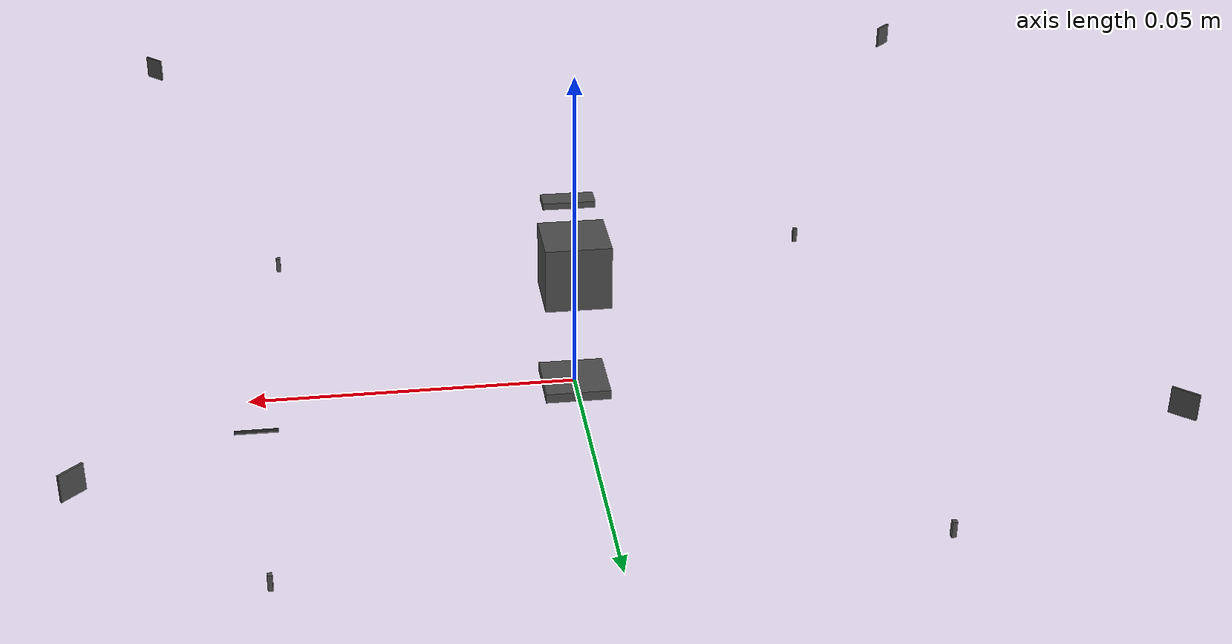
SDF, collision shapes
<sdf version='1.6'>
  <model name='Kwad'>
    <link name='body'>
      <pose frame=''>0 0 0 0 -0 0</pose>
      <inertial>
        <pose frame=''>0 0 0.002661 0 -0 0</pose>
        <mass>0.109</mass>
        <inertia>
          <ixx>0.000202744</ixx>
          <ixy>0</ixy>
          <ixz>0</ixz>
          <iyy>0.000202788</iyy>
          <iyz>0</iyz>
          <izz>0.000290849</izz>
        </inertia>
      </inertial>
      <collision name='body_collision'>
        <pose frame=''>0 0 0 0 -0 0</pose>
        <geometry>
          <box>
            <size>0.01 0.01 0.0015</size>
          </box>
        </geometry>
        <surface>
          <contact>
            <ode/>
          </contact>
          <friction>
            <ode/>
          </friction>
        </surface>
      </collision>
      <collision name='body_fixed_joint_lump__cap_collision_1'>
        <pose frame=''>0 -0.008 0.027 0 -0 0</pose>
        <geometry>
          <box>
            <size>0.008 0.0035 0.001</size>
          </box>
        </geometry>
        <surface>
          <contact>
            <ode/>
          </contact>
          <friction>
            <ode/>
          </friction>
        </surface>
      </collision>
      <collision name='body_fixed_joint_lump__imu_link_collision_2'>
        <pose frame=''>0 0 0.02 0 -0 0</pose>
        <geometry>
          <box>
            <size>0.01 0.01 0.01</size>
          </box>
        </geometry>
        <surface>
          <contact>
            <ode/>
          </contact>
          <friction>
            <ode/>
          </friction>
        </surface>
      </collision>
      <collision name='body_fixed_joint_lump__motor1_collision_3'>
        <pose frame=''>-0.046 -0.046 0 0 -0 0</pose>
        <geometry>
          <box>
            <size>0.0007 0.0007 0.0025</size>
          </box>
        </geometry>
        <surface>
          <contact>
            <ode/>
          </contact>
          <friction>
            <ode/>
          </friction>
        </surface>
      </collision>
      <collision name='body_fixed_joint_lump__guard1_collision_4'>
        <pose frame=''>-0.0655 -0.0655 0.03 -3.14159 -1.57079 2.3562</pose>
        <geometry>
          <box>
            <size>0.0035 0.0035 0.0003</size>
          </box>
        </geometry>
        <surface>
          <contact>
            <ode/>
          </contact>
          <friction>
            <ode/>
          </friction>
        </surface>
      </collision>
      <collision name='body_fixed_joint_lump__motor2_collision_5'>
        <pose frame=''>-0.046 0.046 0 0 -0 0</pose>
        <geometry>
          <box>
            <size>0.0007 0.0007 0.0025</size>
          </box>
        </geometry>
        <surface>
          <contact>
            <ode/>
          </contact>
          <friction>
            <ode/>
          </friction>
        </surface>
      </collision>
      <collision name='body_fixed_joint_lump__guard2_collision_6'>
        <pose frame=''>-0.0655 0.0655 0.03 3.14159 -1.57079 0.785403</pose>
        <geometry>
          <box>
            <size>0.0035 0.0035 0.0003</size>
          </box>
        </geometry>
        <surface>
          <contact>
            <ode/>
          </contact>
          <friction>
            <ode/>
          </friction>
        </surface>
      </collision>
      <collision name='body_fixed_joint_lump__motor3_collision_7'>
        <pose frame=''>0.046 -0.046 0 0 -0 0</pose>
        <geometry>
          <box>
            <size>0.0007 0.0007 0.0025</size>
          </box>
        </geometry>
        <surface>
          <contact>
            <ode/>
          </contact>
          <friction>
            <ode/>
          </friction>
        </surface>
      </collision>
      <collision name='body_fixed_joint_lump__guard3_collision_8'>
        <pose frame=''>0.0655 -0.0655 0.03 3.14159 -1.57079 -2.3562</pose>
        <geometry>
          <box>
            <size>0.0035 0.0035 0.0003</size>
          </box>
        </geometry>
        <surface>
          <contact>
            <ode/>
          </contact>
          <friction>
            <ode/>
          </friction>
        </surface>
      </collision>
      <collision name='body_fixed_joint_lump__motor4_collision_9'>
        <pose frame=''>0.046 0.046 0 0 -0 0</pose>
        <geometry>
          <box>
            <size>0.0007 0.0007 0.0025</size>
          </box>
        </geometry>
        <surface>
          <contact>
            <ode/>
          </contact>
          <friction>
            <ode/>
          </friction>
        </surface>
      </collision>
      <collision name='body_fixed_joint_lump__guard4_collision_10'>
        <pose frame=''>0.0655 0.0655 0.03 3.14159 -1.57079 -0.785403</pose>
        <geometry>
          <box>
            <size>0.0035 0.0035 0.0003</size>
          </box>
        </geometry>
        <surface>
          <contact>
            <ode/>
          </contact>
          <friction>
            <ode/>
          </friction>
        </surface>
      </collision>
      <visual name='body_visual'>
        <pose frame=''>0 0 0 0 -0 0</pose>
        <geometry>
          <mesh>
            <scale>0.01 0.01 0.01</scale>
            <uri>model://fly_bot_cpp/meshes/body.dae</uri>
          </mesh>
        </geometry>
        <material>
          <script>
            <name>Gazebo/DarkGrey</name>
            <uri>file://media/materials/scripts/gazebo.material</uri>
          </script>
        </material>
      </visual>
      <visual name='body_fixed_joint_lump__cap_visual_1'>
        <pose frame=''>0 -0.008 0.027 0 -0 0</pose>
        <geometry>
          <mesh>
            <scale>0.0088 0.0088 0.0088</scale>
            <uri>model://fly_bot_cpp/meshes/cap.dae</uri>
          </mesh>
        </geometry>
        <material>
          <script>
            <name>Gazebo/FlatBlack</name>
            <uri>file://media/materials/scripts/gazebo.material</uri>
          </script>
        </material>
      </visual>
      <visual name='body_fixed_joint_lump__imu_link_visual_2'>
        <pose frame=''>0 0 0.02 0 -0 0</pose>
        <geometry>
          <box>
            <size>0.001 0.001 0.001</size>
          </box>
        </geometry>
        <material>
          <script>
            <uri>__default__</uri>
            <name>__default__</name>
          </script>
        </material>
      </visual>
      <visual name='body_fixed_joint_lump__motor1_visual_3'>
        <pose frame=''>-0.046 -0.046 0 0 -0 0</pose>
        <geometry>
          <mesh>
            <scale>0.01 0.01 0.01</scale>
            <uri>model://fly_bot_cpp/meshes/motors.dae</uri>
          </mesh>
        </geometry>
        <material>
          <script>
            <name>Gazebo/Grey</name>
            <uri>file://media/materials/scripts/gazebo.material</uri>
          </script>
        </material>
      </visual>
      <visual name='body_fixed_joint_lump__guard1_visual_4'>
        <pose frame=''>-0.0655 -0.0655 0.03 -3.14159 -1.57079 2.3562</pose>
        <geometry>
          <mesh>
            <scale>0.03 0.03 0.03</scale>
            <uri>model://fly_bot_cpp/meshes/guard.stl</uri>
          </mesh>
        </geometry>
        <material>
          <script>
            <name>Gazebo/FlatBlack</name>
            <uri>file://media/materials/scripts/gazebo.material</uri>
          </script>
        </material>
      </visual>
      <visual name='body_fixed_joint_lump__motor2_visual_5'>
        <pose frame=''>-0.046 0.046 0 0 -0 0</pose>
        <geometry>
          <mesh>
            <scale>0.01 0.01 0.01</scale>
            <uri>model://fly_bot_cpp/meshes/motors.dae</uri>
          </mesh>
        </geometry>
        <material>
          <script>
            <name>Gazebo/Grey</name>
            <uri>file://media/materials/scripts/gazebo.material</uri>
          </script>
        </material>
      </visual>
      <visual name='body_fixed_joint_lump__guard2_visual_6'>
        <pose frame=''>-0.0655 0.0655 0.03 3.14159 -1.57079 0.785403</pose>
        <geometry>
          <mesh>
            <scale>0.03 0.03 0.03</scale>
            <uri>model://fly_bot_cpp/meshes/guard.stl</uri>
          </mesh>
        </geometry>
        <material>
          <script>
            <name>Gazebo/FlatBlack</name>
            <uri>file://media/materials/scripts/gazebo.material</uri>
          </script>
        </material>
      </visual>
      <visual name='body_fixed_joint_lump__motor3_visual_7'>
        <pose frame=''>0.046 -0.046 0 0 -0 0</pose>
        <geometry>
          <mesh>
            <scale>0.01 0.01 0.01</scale>
            <uri>model://fly_bot_cpp/meshes/motors.dae</uri>
          </mesh>
        </geometry>
        <material>
          <script>
            <name>Gazebo/Grey</name>
            <uri>file://media/materials/scripts/gazebo.material</uri>
          </script>
        </material>
      </visual>
      <visual name='body_fixed_joint_lump__guard3_visual_8'>
        <pose frame=''>0.0655 -0.0655 0.03 3.14159 -1.57079 -2.3562</pose>
        <geometry>
          <mesh>
            <scale>0.03 0.03 0.03</scale>
            <uri>model://fly_bot_cpp/meshes/guard.stl</uri>
          </mesh>
        </geometry>
        <material>
          <script>
            <name>Gazebo/FlatBlack</name>
            <uri>file://media/materials/scripts/gazebo.material</uri>
          </script>
        </material>
      </visual>
      <visual name='body_fixed_joint_lump__motor4_visual_9'>
        <pose frame=''>0.046 0.046 0 0 -0 0</pose>
        <geometry>
          <mesh>
            <scale>0.01 0.01 0.01</scale>
            <uri>model://fly_bot_cpp/meshes/motors.dae</uri>
          </mesh>
        </geometry>
        <material>
          <script>
            <name>Gazebo/Grey</name>
            <uri>file://media/materials/scripts/gazebo.material</uri>
          </script>
        </material>
      </visual>
      <visual name='body_fixed_joint_lump__guard4_visual_10'>
        <pose frame=''>0.0655 0.0655 0.03 3.14159 -1.57079 -0.785403</pose>
        <geometry>
          <mesh>
            <scale>0.03 0.03 0.03</scale>
            <uri>model://fly_bot_cpp/meshes/guard.stl</uri>
          </mesh>
        </geometry>
        <material>
          <script>
            <name>Gazebo/FlatBlack</name>
            <uri>file://media/materials/scripts/gazebo.material</uri>
          </script>
        </material>
      </visual>
      <velocity_decay/>
      <velocity_decay/>
      <velocity_decay/>
      <sensor name='imu_sensor' type='imu'>
        <always_on>1</always_on>
        <update_rate>100</update_rate>
        <visualize>1</visualize>
        <topic>__default_topic__</topic>
        <plugin name='imu_plugin' filename='libgazebo_ros_imu_sensor.so'>
          <bodyName>imu_link</bodyName>
          <topicName>imu</topicName>
          <gaussianNoise>0</gaussianNoise>
          <updateRateHz>10.0</updateRateHz>
          <xyzOffset>0 0 0</xyzOffset>
          <rpyOffset>0 0 0</rpyOffset>
          <frameName>imu_link</frameName>
        </plugin>
        <pose frame=''>0 0 0.02 0 -0 0</pose>
      </sensor>
      <velocity_decay/>
      <velocity_decay/>
      <velocity_decay/>
      <velocity_decay/>
      <velocity_decay/>
      <velocity_decay/>
      <gravity>1</gravity>
      <velocity_decay/>
      <gravity>1</gravity>
      <velocity_decay/>
    </link>
    <link name='prop1'>
      <pose frame=''>-0.046 -0.046 0 0 -0 0</pose>
      <inertial>
        <pose frame=''>0 0 0 0 -0 0</pose>
        <mass>0.05</mass>
        <inertia>
          <ixx>2.7e-07</ixx>
          <ixy>0</ixy>
          <ixz>0</ixz>
          <iyy>1.26e-05</iyy>
          <iyz>0</iyz>
          <izz>1.285e-05</izz>
        </inertia>
      </inertial>
      <collision name='prop1_collision'>
        <pose frame=''>0 0 0.025 0 -0 0</pose>
        <geometry>
          <box>
            <size>0.00055 8e-05 1e-05</size>
          </box>
        </geometry>
        <surface>
          <contact>
            <ode>
              <max_vel>0.0001</max_vel>
              <min_depth>0.0001</min_depth>
            </ode>
          </contact>
          <friction>
            <ode>
              <mu>0.2</mu>
              <mu2>0.2</mu2>
            </ode>
          </friction>
        </surface>
      </collision>
      <visual name='prop1_visual'>
        <pose frame=''>0 0 0.025 0 -0 0</pose>
        <geometry>
          <mesh>
            <scale>0.02 0.02 0.02</scale>
            <uri>model://fly_bot_cpp/meshes/prop1.dae</uri>
          </mesh>
        </geometry>
        <material>
          <script>
            <name>Gazebo/Black</name>
            <uri>file://media/materials/scripts/gazebo.material</uri>
          </script>
        </material>
      </visual>
      <gravity>1</gravity>
      <velocity_decay>
        <linear>0.9</linear>
        <angular>0.9</angular>
      </velocity_decay>
    </link>
    <joint name='joint_body_prop1' type='revolute'>
      <child>prop1</child>
      <parent>body</parent>
      <axis>
        <xyz>0 0 1</xyz>
        <limit>
          <lower>-1e+16</lower>
          <upper>1e+16</upper>
        </limit>
        <dynamics>
          <damping>1</damping>
          <friction>0</friction>
          <spring_reference>0</spring_reference>
          <spring_stiffness>0</spring_stiffness>
        </dynamics>
        <use_parent_model_frame>0</use_parent_model_frame>
      </axis>
    </joint>
    <link name='prop2'>
      <pose frame=''>-0.046 0.046 0 0 -0 0</pose>
      <inertial>
        <pose frame=''>0 0 0 0 -0 0</pose>
        <mass>0.05</mass>
        <inertia>
          <ixx>2.7e-07</ixx>
          <ixy>0</ixy>
          <ixz>0</ixz>
          <iyy>1.26e-05</iyy>
          <iyz>0</iyz>
          <izz>1.285e-05</izz>
        </inertia>
      </inertial>
      <collision name='prop2_collision'>
        <pose frame=''>0 0 0.025 0 -0 0</pose>
        <geometry>
          <box>
            <size>0.00055 8e-05 1e-05</size>
          </box>
        </geometry>
        <surface>
          <contact>
            <ode>
              <max_vel>0.0001</max_vel>
              <min_depth>0.0001</min_depth>
            </ode>
          </contact>
          <friction>
            <ode>
              <mu>0.2</mu>
              <mu2>0.2</mu2>
            </ode>
          </friction>
        </surface>
      </collision>
      <visual name='prop2_visual'>
        <pose frame=''>0 0 0.025 0 -0 0</pose>
        <geometry>
          <mesh>
            <scale>0.02 0.02 0.02</scale>
            <uri>model://fly_bot_cpp/meshes/prop.dae</uri>
          </mesh>
        </geometry>
        <material>
          <script>
            <name>Gazebo/Black</name>
            <uri>file://media/materials/scripts/gazebo.material</uri>
          </script>
        </material>
      </visual>
      <gravity>1</gravity>
      <velocity_decay>
        <linear>0.9</linear>
        <angular>0.9</angular>
      </velocity_decay>
    </link>
    <joint name='joint_body_prop2' type='revolute'>
      <child>prop2</child>
      <parent>body</parent>
      <axis>
        <xyz>0 0 1</xyz>
        <limit>
          <lower>-1e+16</lower>
          <upper>1e+16</upper>
        </limit>
        <dynamics>
          <damping>1</damping>
          <friction>0</friction>
          <spring_reference>0</spring_reference>
          <spring_stiffness>0</spring_stiffness>
        </dynamics>
        <use_parent_model_frame>0</use_parent_model_frame>
      </axis>
    </joint>
    <link name='prop3'>
      <pose frame=''>0.046 -0.046 0 0 -0 0</pose>
      <inertial>
        <pose frame=''>0 0 0 0 -0 0</pose>
        <mass>0.05</mass>
        <inertia>
          <ixx>2.7e-07</ixx>
          <ixy>0</ixy>
          <ixz>0</ixz>
          <iyy>1.26e-05</iyy>
          <iyz>0</iyz>
          <izz>1.285e-05</izz>
        </inertia>
      </inertial>
      <collision name='prop3_collision'>
        <pose frame=''>0 0 0.025 0 -0 0</pose>
        <geometry>
          <box>
            <size>0.00055 8e-05 1e-05</size>
          </box>
        </geometry>
        <surface>
          <contact>
            <ode>
              <max_vel>0.0001</max_vel>
              <min_depth>0.0001</min_depth>
            </ode>
          </contact>
          <friction>
            <ode>
              <mu>0.2</mu>
              <mu2>0.2</mu2>
            </ode>
          </friction>
        </surface>
      </collision>
      <visual name='prop3_visual'>
        <pose frame=''>0 0 0.025 0 -0 0</pose>
        <geometry>
          <mesh>
            <scale>0.02 0.02 0.02</scale>
            <uri>model://fly_bot_cpp/meshes/prop.dae</uri>
          </mesh>
        </geometry>
        <material>
          <script>
            <name>Gazebo/Black</name>
            <uri>file://media/materials/scripts/gazebo.material</uri>
          </script>
        </material>
      </visual>
      <gravity>1</gravity>
      <velocity_decay>
        <linear>0.9</linear>
        <angular>0.9</angular>
      </velocity_decay>
    </link>
    <joint name='joint_body_prop3' type='revolute'>
      <child>prop3</child>
      <parent>body</parent>
      <axis>
        <xyz>0 0 1</xyz>
        <limit>
          <lower>-1e+16</lower>
          <upper>1e+16</upper>
        </limit>
        <dynamics>
          <damping>1</damping>
          <friction>0</friction>
          <spring_reference>0</spring_reference>
          <spring_stiffness>0</spring_stiffness>
        </dynamics>
        <use_parent_model_frame>0</use_parent_model_frame>
      </axis>
    </joint>
    <link name='prop4'>
      <pose frame=''>0.046 0.046 0 0 -0 0</pose>
      <inertial>
        <pose frame=''>0 0 0 0 -0 0</pose>
        <mass>0.05</mass>
        <inertia>
          <ixx>2.7e-07</ixx>
          <ixy>0</ixy>
          <ixz>0</ixz>
          <iyy>1.26e-05</iyy>
          <iyz>0</iyz>
          <izz>1.285e-05</izz>
        </inertia>
      </inertial>
      <collision name='prop4_collision'>
        <pose frame=''>0 0 0.023 0 -0 0</pose>
        <geometry>
          <box>
            <size>0.0055 0.0008 0.0001</size>
          </box>
        </geometry>
        <surface>
          <contact>
            <ode>
              <max_vel>0.0001</max_vel>
              <min_depth>0.0001</min_depth>
            </ode>
          </contact>
          <friction>
            <ode>
              <mu>0.2</mu>
              <mu2>0.2</mu2>
            </ode>
          </friction>
        </surface>
      </collision>
      <visual name='prop4_visual'>
        <pose frame=''>0 0 0.023 0 -0 0</pose>
        <geometry>
          <mesh>
            <scale>0.02 0.02 0.02</scale>
            <uri>model://fly_bot_cpp/meshes/prop.dae</uri>
          </mesh>
        </geometry>
        <material>
          <script>
            <name>Gazebo/Black</name>
            <uri>file://media/materials/scripts/gazebo.material</uri>
          </script>
        </material>
      </visual>
      <gravity>1</gravity>
      <velocity_decay>
        <linear>0.9</linear>
        <angular>0.9</angular>
      </velocity_decay>
    </link>
    <joint name='joint_body_prop4' type='revolute'>
      <child>prop4</child>
      <parent>body</parent>
      <axis>
        <xyz>0 0 1</xyz>
        <limit>
          <lower>-1e+16</lower>
          <upper>1e+16</upper>
        </limit>
        <dynamics>
          <damping>1</damping>
          <friction>0</friction>
          <spring_reference>0</spring_reference>
          <spring_stiffness>0</spring_stiffness>
        </dynamics>
        <use_parent_model_frame>0</use_parent_model_frame>
      </axis>
    </joint>
    <static>0</static>
  </model>
</sdf>
